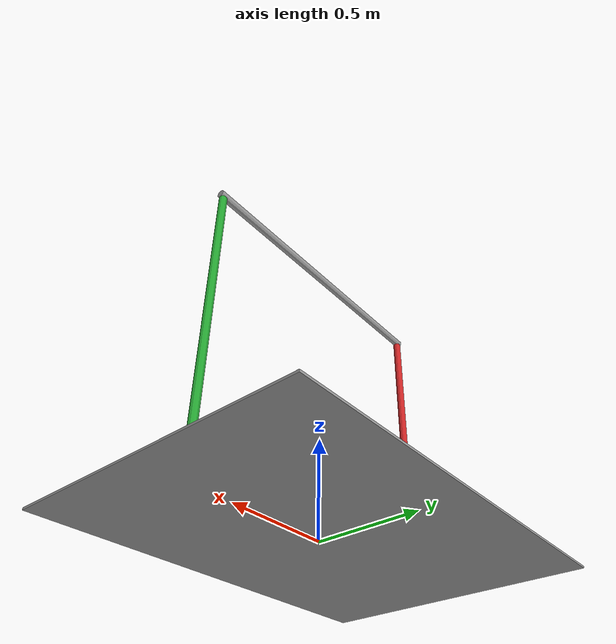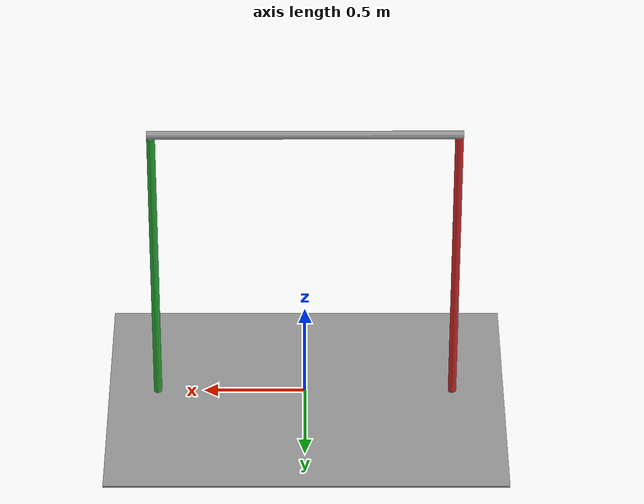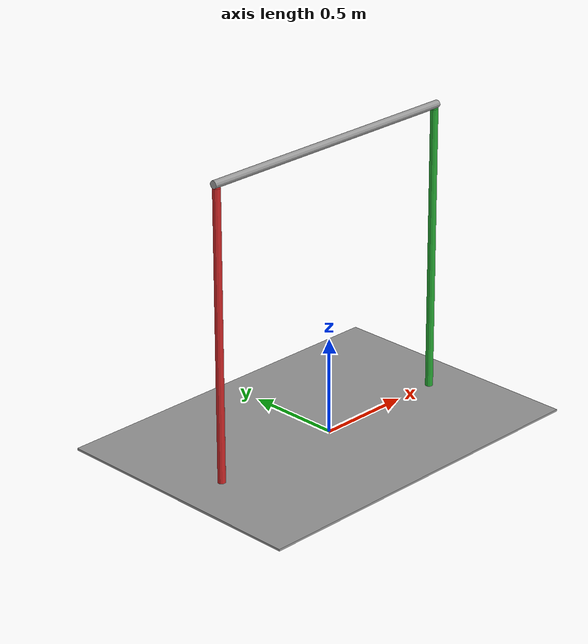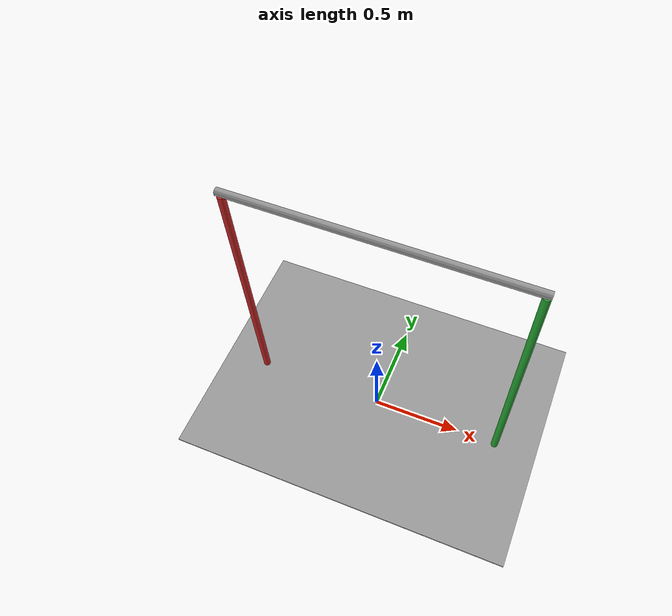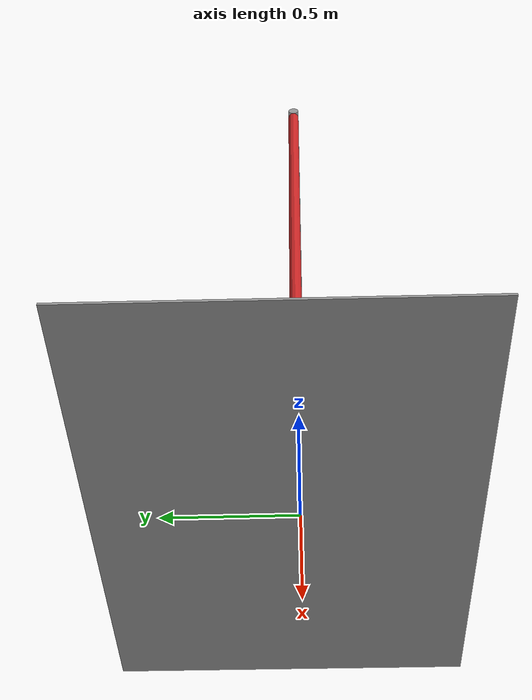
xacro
<?xml version="1.0"?>
<robot
  name="gates_final" xmlns:xacro="http://www.ros.org/wiki/xacro">

  <xacro:include filename="$(find gates_final)/urdf/materials.xacro" />
  <xacro:include filename="$(find gates_final)/urdf/gates_final.gazebo" />

  <link
    name="Base_parent_link">
    <inertial>
      <origin
        xyz="-0.00577427136703015 0.0496763085286102 0.0933867101522411"
        rpy="0 0 0" />
      <mass
        value="229.586609287268" />
      <inertia
        ixx="67.198190725204"
        ixy="0.00454175008895657"
        ixz="-0.130430807521452"
        iyy="103.515348732259"
        iyz="1.12210192840381"
        izz="106.257541756022" />
    </inertial>
    <visual>
      <origin
        xyz="0 0 0"
        rpy="0 0 0" />
      <geometry>
        <mesh
          filename="package://gates_final/meshes/Base_parent_link.STL" />
      </geometry>
      <material
        name="grey">
      </material>
    </visual>
    <collision>
      <origin
        xyz="0 0 0"
        rpy="0 0 0" />
      <geometry>
        <mesh
          filename="package://gates_final/meshes/Base_parent_link.STL" />
      </geometry>
    </collision>
  </link>
  <link
    name="Left_link">
    <inertial>
      <origin
        xyz="-0.73 0.75 2.8423E-19"
        rpy="0 0 0" />
      <mass
        value="14.812" />
      <inertia
        ixx="2.7787"
        ixy="-4.2936E-34"
        ixz="0"
        iyy="0.0029624"
        iyz="7.3896E-34"
        izz="2.7787" />
    </inertial>
    <visual>
      <origin
        xyz="0 0 0"
        rpy="0 0 0" />
      <geometry>
        <mesh
          filename="package://gates_final/meshes/Left_link.STL" />
      </geometry>
      <material
        name="red">
      </material>
    </visual>
    <collision>
      <origin
        xyz="0 0 0"
        rpy="0 0 0" />
      <geometry>
        <mesh
          filename="package://gates_final/meshes/Left_link.STL" />
      </geometry>
    </collision>
  </link>
  <joint
    name="Left_part"
    type="fixed">
    <origin
      xyz="0 0 0"
      rpy="1.5708 0 0" />
    <parent
      link="Base_parent_link" />
    <child
      link="Left_link" />
    <axis
      xyz="0 0 0" />
  </joint>
  <link
    name="Right_link">
    <inertial>
      <origin
        xyz="0.73 0.75 9.5828E-19"
        rpy="0 0 0" />
      <mass
        value="14.812" />
      <inertia
        ixx="2.7787"
        ixy="-4.2936E-34"
        ixz="0"
        iyy="0.0029624"
        iyz="-8.1642E-34"
        izz="2.7787" />
    </inertial>
    <visual>
      <origin
        xyz="0 0 0"
        rpy="0 0 0" />
      <geometry>
        <mesh
          filename="package://gates_final/meshes/Right_link.STL" />
      </geometry>
      <material
        name="green">
      </material>
    </visual>
    <collision>
      <origin
        xyz="0 0 0"
        rpy="0 0 0" />
      <geometry>
        <mesh
          filename="package://gates_final/meshes/Right_link.STL" />
      </geometry>
    </collision>
  </link>
  <joint
    name="Right_part"
    type="fixed">
    <origin
      xyz="0 0 0"
      rpy="1.5708 0 0" />
    <parent
      link="Base_parent_link" />
    <child
      link="Right_link" />
    <axis
      xyz="0 0 0" />
  </joint>
</robot>
